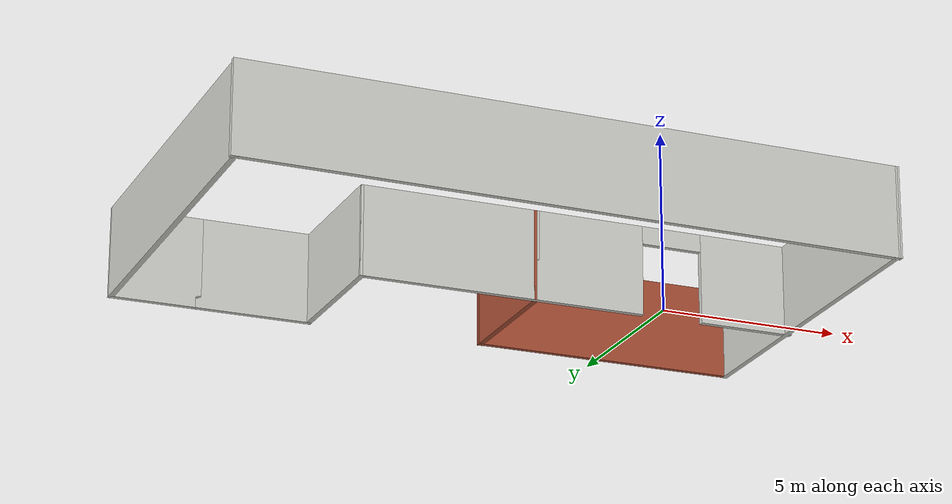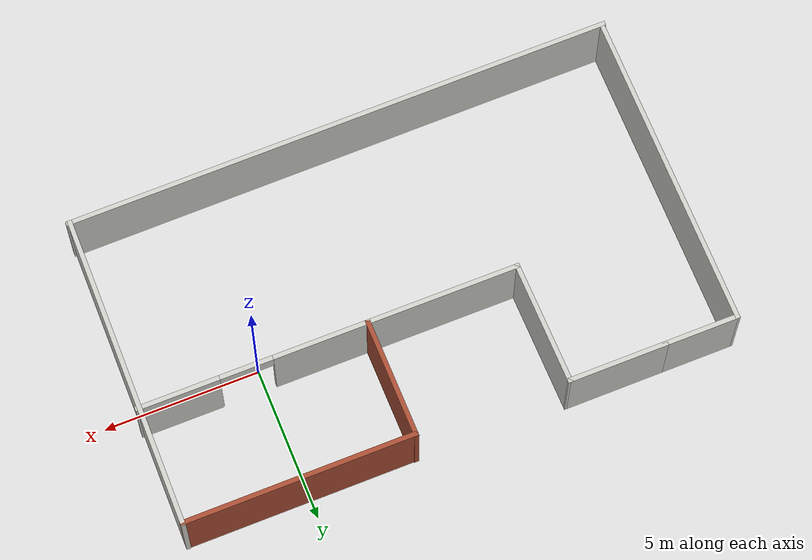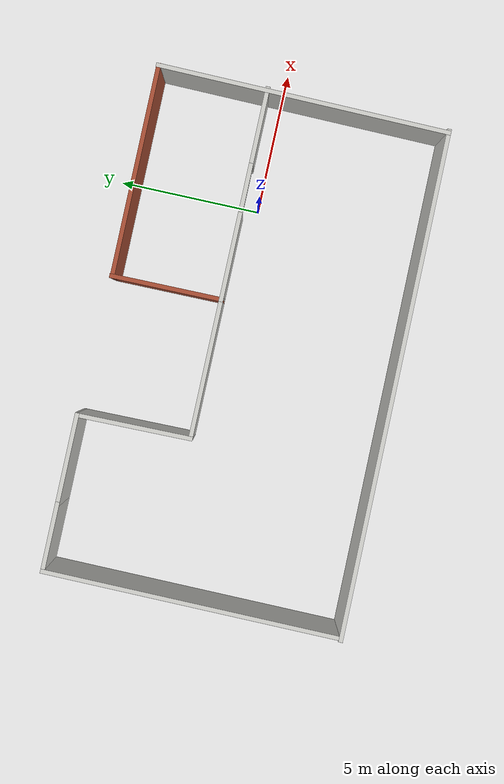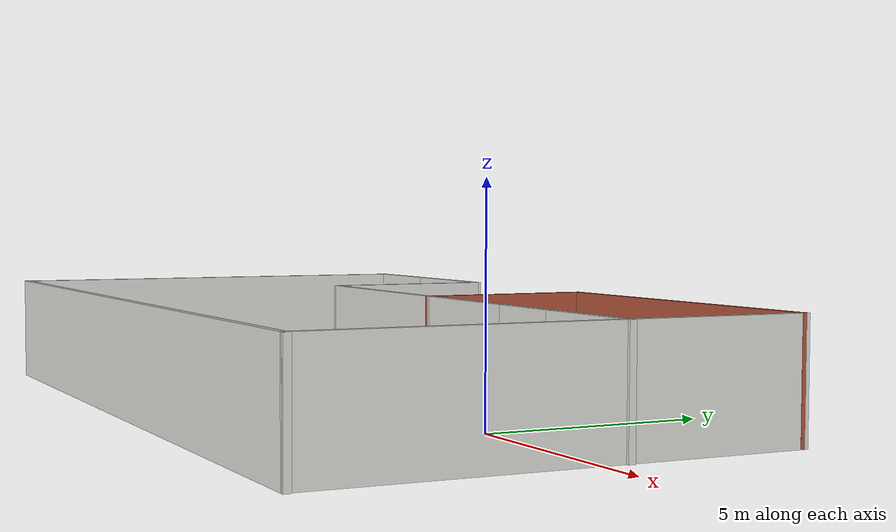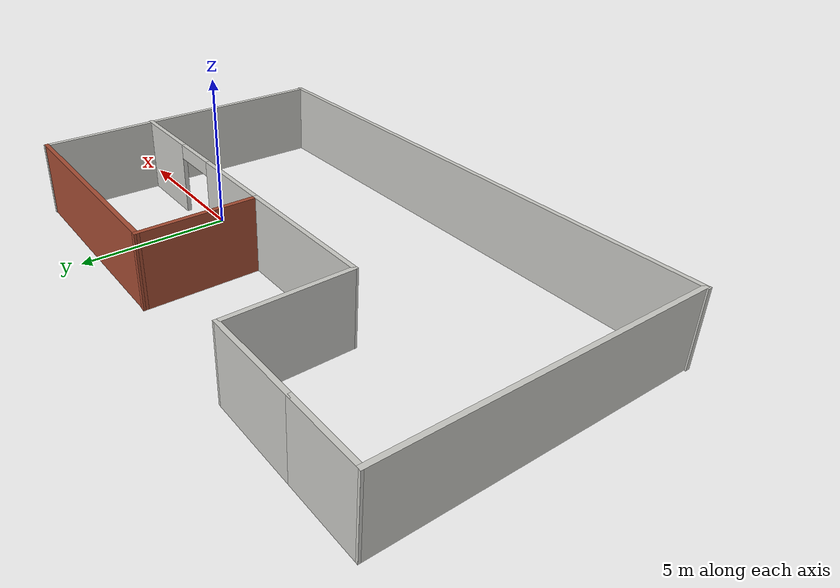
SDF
<?xml version='1.0'?>
<sdf version='1.7'>
  <model name='building'>
    <pose>-4.95348 -0.700382 0 0 -0 0</pose>
    <link name='Wall_10'>
      <collision name='Wall_10_Collision'>
        <geometry>
          <box>
            <size>10.3107 0.15 2.5</size>
          </box>
        </geometry>
        <pose>0 0 1.25 0 -0 0</pose>
      </collision>
      <visual name='Wall_10_Visual'>
        <pose>0 0 1.25 0 -0 0</pose>
        <geometry>
          <box>
            <size>10.3107 0.15 2.5</size>
          </box>
        </geometry>
        <material>
          <script>
            <uri>file://media/materials/scripts/gazebo.material</uri>
            <name>Gazebo/CeilingTiled</name>
          </script>
          <ambient>0.435294 0.796078 0.67451 1</ambient>
        </material>
        <meta>
          <layer>0</layer>
        </meta>
      </visual>
      <pose>8.82308 0.001226 0 0 -0 -1.58217</pose>
    </link>
    <link name='Wall_11'>
      <collision name='Wall_11_Collision'>
        <geometry>
          <box>
            <size>17.8668 0.15 2.5</size>
          </box>
        </geometry>
        <pose>0 0 1.25 0 -0 0</pose>
      </collision>
      <visual name='Wall_11_Visual'>
        <pose>0 0 1.25 0 -0 0</pose>
        <geometry>
          <box>
            <size>17.8668 0.15 2.5</size>
          </box>
        </geometry>
        <material>
          <script>
            <uri>file://media/materials/scripts/gazebo.material</uri>
            <name>Gazebo/CeilingTiled</name>
          </script>
          <ambient>0.435294 0.796078 0.67451 1</ambient>
        </material>
        <meta>
          <layer>0</layer>
        </meta>
      </visual>
      <pose>-0.039606 -5.14818 0 0 -0 -3.13376</pose>
    </link>
    <link name='Wall_12'>
      <collision name='Wall_12_Collision'>
        <geometry>
          <box>
            <size>10.5618 0.15 2.5</size>
          </box>
        </geometry>
        <pose>0 0 1.25 0 -0 0</pose>
      </collision>
      <visual name='Wall_12_Visual'>
        <pose>0 0 1.25 0 -0 0</pose>
        <geometry>
          <box>
            <size>10.5618 0.15 2.5</size>
          </box>
        </geometry>
        <material>
          <script>
            <uri>file://media/materials/scripts/gazebo.material</uri>
            <name>Gazebo/CeilingTiled</name>
          </script>
          <ambient>0.435294 0.796078 0.67451 1</ambient>
        </material>
        <meta>
          <layer>0</layer>
        </meta>
      </visual>
      <pose>-8.82658 0.011386 0 0 -0 1.56601</pose>
    </link>
    <link name='Wall_13'>
      <collision name='Wall_13_Collision'>
        <geometry>
          <box>
            <size>2.5 0.15 2.5</size>
          </box>
        </geometry>
        <pose>0 0 1.25 0 -0 0</pose>
      </collision>
      <visual name='Wall_13_Visual'>
        <pose>0 0 1.25 0 -0 0</pose>
        <geometry>
          <box>
            <size>2.5 0.15 2.5</size>
          </box>
        </geometry>
        <material>
          <script>
            <uri>file://media/materials/scripts/gazebo.material</uri>
            <name>Gazebo/CeilingTiled</name>
          </script>
          <ambient>0.435294 0.796078 0.67451 1</ambient>
        </material>
        <meta>
          <layer>0</layer>
        </meta>
      </visual>
      <pose>-7.62667 5.21722 0 0 -0 0</pose>
    </link>
    <link name='Wall_18'>
      <pose>5.22332 1.26722 0 0 -0 0</pose>
      <visual name='Wall_18_Visual_0'>
        <pose>-2.18631 0 1.25 0 -0 0</pose>
        <geometry>
          <box>
            <size>3.12738 0.15 2.5</size>
          </box>
        </geometry>
        <material>
          <script>
            <uri>file://media/materials/scripts/gazebo.material</uri>
            <name>Gazebo/CeilingTiled</name>
          </script>
          <ambient>0.435294 0.796078 0.67451 1</ambient>
        </material>
        <meta>
          <layer>0</layer>
        </meta>
      </visual>
      <collision name='Wall_18_Collision_0'>
        <geometry>
          <box>
            <size>3.12738 0.15 2.5</size>
          </box>
        </geometry>
        <pose>-2.18631 0 1.25 0 -0 0</pose>
      </collision>
      <visual name='Wall_18_Visual_1'>
        <pose>2.41596 0 1.25 0 -0 0</pose>
        <geometry>
          <box>
            <size>2.66807 0.15 2.5</size>
          </box>
        </geometry>
        <material>
          <script>
            <uri>file://media/materials/scripts/gazebo.material</uri>
            <name>Gazebo/CeilingTiled</name>
          </script>
          <ambient>0.435294 0.796078 0.67451 1</ambient>
        </material>
        <meta>
          <layer>0</layer>
        </meta>
      </visual>
      <collision name='Wall_18_Collision_1'>
        <geometry>
          <box>
            <size>2.66807 0.15 2.5</size>
          </box>
        </geometry>
        <pose>2.41596 0 1.25 0 -0 0</pose>
      </collision>
      <visual name='Wall_18_Visual_2'>
        <pose>0.229656 0 2.25 0 -0 0</pose>
        <geometry>
          <box>
            <size>1.70454 0.15 0.5</size>
          </box>
        </geometry>
        <material>
          <script>
            <uri>file://media/materials/scripts/gazebo.material</uri>
            <name>Gazebo/CeilingTiled</name>
          </script>
          <ambient>0.435294 0.796078 0.67451 1</ambient>
        </material>
        <meta>
          <layer>0</layer>
        </meta>
      </visual>
      <collision name='Wall_18_Collision_2'>
        <geometry>
          <box>
            <size>1.70454 0.15 0.5</size>
          </box>
        </geometry>
        <pose>0.229656 0 2.25 0 -0 0</pose>
      </collision>
    </link>
    <link name='Wall_5'>
      <collision name='Wall_5_Collision'>
        <geometry>
          <box>
            <size>3.25 0.15 2.5</size>
          </box>
        </geometry>
        <pose>0 0 1.25 0 -0 0</pose>
      </collision>
      <visual name='Wall_5_Visual'>
        <pose>0 0 1.25 0 -0 0</pose>
        <geometry>
          <box>
            <size>3.25 0.15 2.5</size>
          </box>
        </geometry>
        <material>
          <script>
            <uri>file://media/materials/scripts/gazebo.material</uri>
            <name>Gazebo/CeilingTiled</name>
          </script>
          <ambient>0.435294 0.796078 0.67451 1</ambient>
        </material>
        <meta>
          <layer>0</layer>
        </meta>
      </visual>
      <pose>-4.90168 5.21722 0 0 -0 0</pose>
    </link>
    <link name='Wall_6'>
      <collision name='Wall_6_Collision'>
        <geometry>
          <box>
            <size>4.10032 0.15 2.5</size>
          </box>
        </geometry>
        <pose>0 0 1.25 0 -0 0</pose>
      </collision>
      <visual name='Wall_6_Visual'>
        <pose>0 0 1.25 0 -0 0</pose>
        <geometry>
          <box>
            <size>4.10032 0.15 2.5</size>
          </box>
        </geometry>
        <material>
          <script>
            <uri>file://media/materials/scripts/gazebo.material</uri>
            <name>Gazebo/CeilingTiled</name>
          </script>
          <ambient>0.435294 0.796078 0.67451 1</ambient>
        </material>
        <meta>
          <layer>0</layer>
        </meta>
      </visual>
      <pose>-3.32667 3.24222 0 0 -0 -1.55814</pose>
    </link>
    <link name='Wall_7'>
      <collision name='Wall_7_Collision'>
        <geometry>
          <box>
            <size>5 0.15 2.5</size>
          </box>
        </geometry>
        <pose>0 0 1.25 0 -0 0</pose>
      </collision>
      <visual name='Wall_7_Visual'>
        <pose>0 0 1.25 0 -0 0</pose>
        <geometry>
          <box>
            <size>5 0.15 2.5</size>
          </box>
        </geometry>
        <material>
          <script>
            <uri>file://media/materials/scripts/gazebo.material</uri>
            <name>Gazebo/CeilingTiled</name>
          </script>
          <ambient>0.435294 0.796078 0.67451 1</ambient>
        </material>
        <meta>
          <layer>0</layer>
        </meta>
      </visual>
      <pose>-0.876675 1.26722 0 0 -0 0</pose>
    </link>
    <link name='Wall_8'>
      <collision name='Wall_8_Collision'>
        <geometry>
          <box>
            <size>3.96407 0.15 2.5</size>
          </box>
        </geometry>
        <pose>0 0 1.25 0 -0 0</pose>
      </collision>
      <visual name='Wall_8_Visual'>
        <pose>0 0 1.25 0 -0 0</pose>
        <geometry>
          <box>
            <size>3.96407 0.15 2.5</size>
          </box>
        </geometry>
        <material>
          <script>
            <uri>file://media/materials/scripts/gazebo.material</uri>
            <name>Gazebo/Bricks</name>
          </script>
          <ambient>0.435294 0.796078 0.67451 1</ambient>
        </material>
        <meta>
          <layer>0</layer>
        </meta>
      </visual>
      <pose>1.53958 3.17423 0 0 -0 1.57538</pose>
    </link>
    <link name='Wall_9'>
      <collision name='Wall_9_Collision'>
        <geometry>
          <box>
            <size>7.5 0.15 2.5</size>
          </box>
        </geometry>
        <pose>0 0 1.25 0 -0 0</pose>
      </collision>
      <visual name='Wall_9_Visual'>
        <pose>0 0 1.25 0 -0 0</pose>
        <geometry>
          <box>
            <size>7.5 0.15 2.5</size>
          </box>
        </geometry>
        <material>
          <script>
            <uri>file://media/materials/scripts/gazebo.material</uri>
            <name>Gazebo/Bricks</name>
          </script>
          <ambient>0.988235 0.913725 0.309804 1</ambient>
        </material>
        <meta>
          <layer>0</layer>
        </meta>
      </visual>
      <pose>5.20584 5.06375 0 0 -0 0</pose>
    </link>
    <static>1</static>
  </model>
</sdf>
